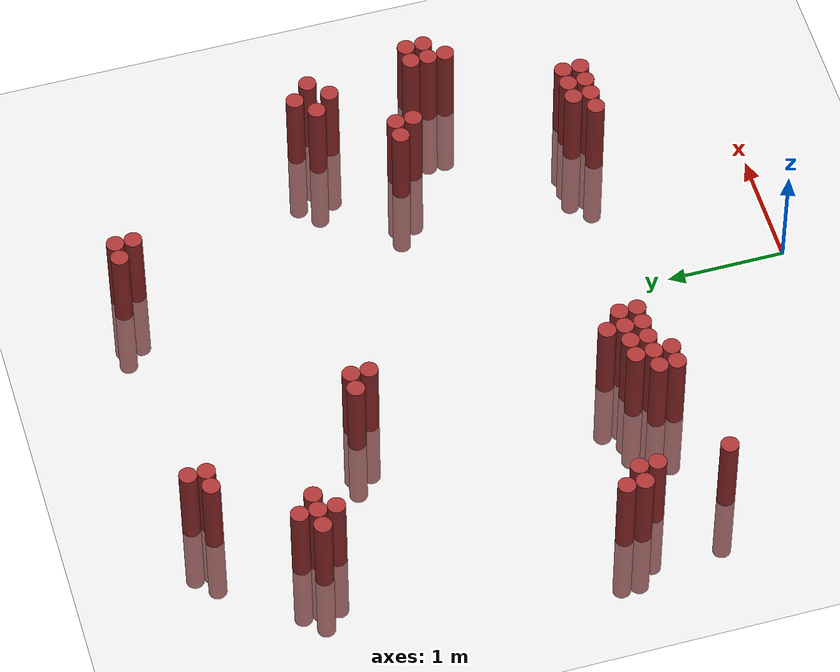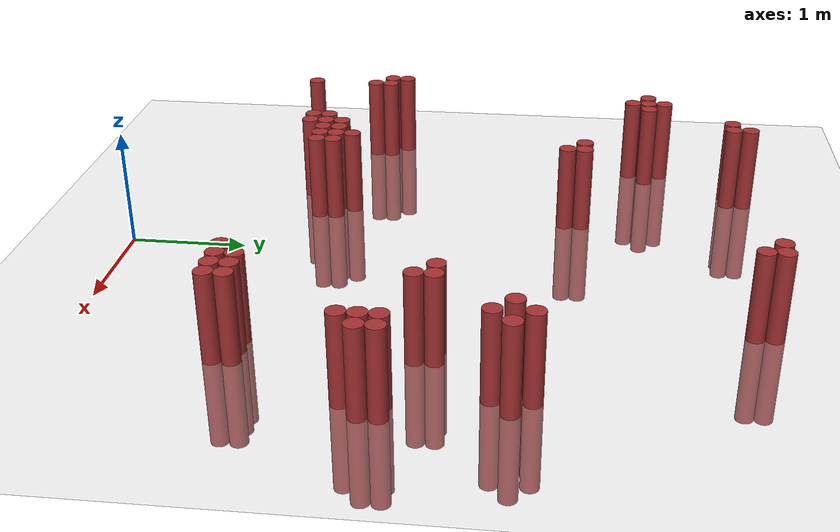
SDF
<sdf version="1.6">
 <world name="default">
  <model name="ground_plane">
   <static>1</static>
   <link name="link">
    <collision name="collision">
     <geometry><plane><normal>0 0 1</normal><size>100 100</size></plane></geometry>
     <surface><friction><ode><mu>100</mu><mu2>50</mu2></ode></friction></surface>
    </collision>
    <visual name="visual">
     <cast_shadows>0</cast_shadows>
     <geometry><plane><normal>0 0 1</normal><size>100 100</size></plane></geometry>
     <material>
      <script><uri>file://media/materials/scripts/gazebo.material</uri><name>Gazebo/Grey</name></script>
     </material>
    </visual>
   </link>
  </model>
  <model name="unit_cylinder_317">
   <static>1</static>
   <pose>-2.375000 1.975000 0.000000 0.000000 0.000000 0.000000</pose>
   <link name="link">
    <inertial>
     <mass>1</mass>
     <inertia><ixx>0.145833</ixx><ixy>0</ixy><ixz>0</ixz><iyy>0.145833</iyy><iyz>0</iyz><izz>0.125</izz></inertia>
    </inertial>
    <collision name="collision">
     <geometry><cylinder><radius>0.075000</radius><length>1.5</length></cylinder></geometry>
    </collision>
    <visual name="visual">
     <geometry><cylinder><radius>0.075000</radius><length>1.5</length></cylinder></geometry>
     <material>
      <ambient>0.648000 0.192000 0.192000 1</ambient>
      <diffuse>0.648000 0.192000 0.192000 1</diffuse>
     </material>
     <material>
      <script><name>Gazebo/Grey</name><uri>file://media/materials/scripts/gazebo.material</uri></script>
     </material>
    </visual>
   </link>
  </model>
  <model name="unit_cylinder_318">
   <static>1</static>
   <pose>-2.375000 2.125000 0.000000 0.000000 0.000000 0.000000</pose>
   <link name="link">
    <inertial>
     <mass>1</mass>
     <inertia><ixx>0.145833</ixx><ixy>0</ixy><ixz>0</ixz><iyy>0.145833</iyy><iyz>0</iyz><izz>0.125</izz></inertia>
    </inertial>
    <collision name="collision">
     <geometry><cylinder><radius>0.075000</radius><length>1.5</length></cylinder></geometry>
    </collision>
    <visual name="visual">
     <geometry><cylinder><radius>0.075000</radius><length>1.5</length></cylinder></geometry>
     <material>
      <ambient>0.648000 0.192000 0.192000 1</ambient>
      <diffuse>0.648000 0.192000 0.192000 1</diffuse>
     </material>
     <material>
      <script><name>Gazebo/Grey</name><uri>file://media/materials/scripts/gazebo.material</uri></script>
     </material>
    </visual>
   </link>
  </model>
  <model name="unit_cylinder_319">
   <static>1</static>
   <pose>-2.225000 1.225000 0.000000 0.000000 0.000000 0.000000</pose>
   <link name="link">
    <inertial>
     <mass>1</mass>
     <inertia><ixx>0.145833</ixx><ixy>0</ixy><ixz>0</ixz><iyy>0.145833</iyy><iyz>0</iyz><izz>0.125</izz></inertia>
    </inertial>
    <collision name="collision">
     <geometry><cylinder><radius>0.075000</radius><length>1.5</length></cylinder></geometry>
    </collision>
    <visual name="visual">
     <geometry><cylinder><radius>0.075000</radius><length>1.5</length></cylinder></geometry>
     <material>
      <ambient>0.648000 0.192000 0.192000 1</ambient>
      <diffuse>0.648000 0.192000 0.192000 1</diffuse>
     </material>
     <material>
      <script><name>Gazebo/Grey</name><uri>file://media/materials/scripts/gazebo.material</uri></script>
     </material>
    </visual>
   </link>
  </model>
  <model name="unit_cylinder_320">
   <static>1</static>
   <pose>-2.225000 1.825000 0.000000 0.000000 0.000000 0.000000</pose>
   <link name="link">
    <inertial>
     <mass>1</mass>
     <inertia><ixx>0.145833</ixx><ixy>0</ixy><ixz>0</ixz><iyy>0.145833</iyy><iyz>0</iyz><izz>0.125</izz></inertia>
    </inertial>
    <collision name="collision">
     <geometry><cylinder><radius>0.075000</radius><length>1.5</length></cylinder></geometry>
    </collision>
    <visual name="visual">
     <geometry><cylinder><radius>0.075000</radius><length>1.5</length></cylinder></geometry>
     <material>
      <ambient>0.648000 0.192000 0.192000 1</ambient>
      <diffuse>0.648000 0.192000 0.192000 1</diffuse>
     </material>
     <material>
      <script><name>Gazebo/Grey</name><uri>file://media/materials/scripts/gazebo.material</uri></script>
     </material>
    </visual>
   </link>
  </model>
  <model name="unit_cylinder_321">
   <static>1</static>
   <pose>-2.225000 1.975000 0.000000 0.000000 0.000000 0.000000</pose>
   <link name="link">
    <inertial>
     <mass>1</mass>
     <inertia><ixx>0.145833</ixx><ixy>0</ixy><ixz>0</ixz><iyy>0.145833</iyy><iyz>0</iyz><izz>0.125</izz></inertia>
    </inertial>
    <collision name="collision">
     <geometry><cylinder><radius>0.075000</radius><length>1.5</length></cylinder></geometry>
    </collision>
    <visual name="visual">
     <geometry><cylinder><radius>0.075000</radius><length>1.5</length></cylinder></geometry>
     <material>
      <ambient>0.648000 0.192000 0.192000 1</ambient>
      <diffuse>0.648000 0.192000 0.192000 1</diffuse>
     </material>
     <material>
      <script><name>Gazebo/Grey</name><uri>file://media/materials/scripts/gazebo.material</uri></script>
     </material>
    </visual>
   </link>
  </model>
  <model name="unit_cylinder_324">
   <static>1</static>
   <pose>-2.075000 4.525000 0.000000 0.000000 0.000000 0.000000</pose>
   <link name="link">
    <inertial>
     <mass>1</mass>
     <inertia><ixx>0.145833</ixx><ixy>0</ixy><ixz>0</ixz><iyy>0.145833</iyy><iyz>0</iyz><izz>0.125</izz></inertia>
    </inertial>
    <collision name="collision">
     <geometry><cylinder><radius>0.075000</radius><length>1.5</length></cylinder></geometry>
    </collision>
    <visual name="visual">
     <geometry><cylinder><radius>0.075000</radius><length>1.5</length></cylinder></geometry>
     <material>
      <ambient>0.648000 0.192000 0.192000 1</ambient>
      <diffuse>0.648000 0.192000 0.192000 1</diffuse>
     </material>
     <material>
      <script><name>Gazebo/Grey</name><uri>file://media/materials/scripts/gazebo.material</uri></script>
     </material>
    </visual>
   </link>
  </model>
  <model name="unit_cylinder_331">
   <static>1</static>
   <pose>-1.925000 4.375000 0.000000 0.000000 0.000000 0.000000</pose>
   <link name="link">
    <inertial>
     <mass>1</mass>
     <inertia><ixx>0.145833</ixx><ixy>0</ixy><ixz>0</ixz><iyy>0.145833</iyy><iyz>0</iyz><izz>0.125</izz></inertia>
    </inertial>
    <collision name="collision">
     <geometry><cylinder><radius>0.075000</radius><length>1.5</length></cylinder></geometry>
    </collision>
    <visual name="visual">
     <geometry><cylinder><radius>0.075000</radius><length>1.5</length></cylinder></geometry>
     <material>
      <ambient>0.648000 0.192000 0.192000 1</ambient>
      <diffuse>0.648000 0.192000 0.192000 1</diffuse>
     </material>
     <material>
      <script><name>Gazebo/Grey</name><uri>file://media/materials/scripts/gazebo.material</uri></script>
     </material>
    </visual>
   </link>
  </model>
  <model name="unit_cylinder_332">
   <static>1</static>
   <pose>-1.925000 4.525000 0.000000 0.000000 0.000000 0.000000</pose>
   <link name="link">
    <inertial>
     <mass>1</mass>
     <inertia><ixx>0.145833</ixx><ixy>0</ixy><ixz>0</ixz><iyy>0.145833</iyy><iyz>0</iyz><izz>0.125</izz></inertia>
    </inertial>
    <collision name="collision">
     <geometry><cylinder><radius>0.075000</radius><length>1.5</length></cylinder></geometry>
    </collision>
    <visual name="visual">
     <geometry><cylinder><radius>0.075000</radius><length>1.5</length></cylinder></geometry>
     <material>
      <ambient>0.648000 0.192000 0.192000 1</ambient>
      <diffuse>0.648000 0.192000 0.192000 1</diffuse>
     </material>
     <material>
      <script><name>Gazebo/Grey</name><uri>file://media/materials/scripts/gazebo.material</uri></script>
     </material>
    </visual>
   </link>
  </model>
  <model name="unit_cylinder_333">
   <static>1</static>
   <pose>-1.925000 4.675000 0.000000 0.000000 0.000000 0.000000</pose>
   <link name="link">
    <inertial>
     <mass>1</mass>
     <inertia><ixx>0.145833</ixx><ixy>0</ixy><ixz>0</ixz><iyy>0.145833</iyy><iyz>0</iyz><izz>0.125</izz></inertia>
    </inertial>
    <collision name="collision">
     <geometry><cylinder><radius>0.075000</radius><length>1.5</length></cylinder></geometry>
    </collision>
    <visual name="visual">
     <geometry><cylinder><radius>0.075000</radius><length>1.5</length></cylinder></geometry>
     <material>
      <ambient>0.648000 0.192000 0.192000 1</ambient>
      <diffuse>0.648000 0.192000 0.192000 1</diffuse>
     </material>
     <material>
      <script><name>Gazebo/Grey</name><uri>file://media/materials/scripts/gazebo.material</uri></script>
     </material>
    </visual>
   </link>
  </model>
  <model name="unit_cylinder_336">
   <static>1</static>
   <pose>-1.775000 4.525000 0.000000 0.000000 0.000000 0.000000</pose>
   <link name="link">
    <inertial>
     <mass>1</mass>
     <inertia><ixx>0.145833</ixx><ixy>0</ixy><ixz>0</ixz><iyy>0.145833</iyy><iyz>0</iyz><izz>0.125</izz></inertia>
    </inertial>
    <collision name="collision">
     <geometry><cylinder><radius>0.075000</radius><length>1.5</length></cylinder></geometry>
    </collision>
    <visual name="visual">
     <geometry><cylinder><radius>0.075000</radius><length>1.5</length></cylinder></geometry>
     <material>
      <ambient>0.648000 0.192000 0.192000 1</ambient>
      <diffuse>0.648000 0.192000 0.192000 1</diffuse>
     </material>
     <material>
      <script><name>Gazebo/Grey</name><uri>file://media/materials/scripts/gazebo.material</uri></script>
     </material>
    </visual>
   </link>
  </model>
  <model name="unit_cylinder_337">
   <static>1</static>
   <pose>-1.475000 5.275000 0.000000 0.000000 0.000000 0.000000</pose>
   <link name="link">
    <inertial>
     <mass>1</mass>
     <inertia><ixx>0.145833</ixx><ixy>0</ixy><ixz>0</ixz><iyy>0.145833</iyy><iyz>0</iyz><izz>0.125</izz></inertia>
    </inertial>
    <collision name="collision">
     <geometry><cylinder><radius>0.075000</radius><length>1.5</length></cylinder></geometry>
    </collision>
    <visual name="visual">
     <geometry><cylinder><radius>0.075000</radius><length>1.5</length></cylinder></geometry>
     <material>
      <ambient>0.648000 0.192000 0.192000 1</ambient>
      <diffuse>0.648000 0.192000 0.192000 1</diffuse>
     </material>
     <material>
      <script><name>Gazebo/Grey</name><uri>file://media/materials/scripts/gazebo.material</uri></script>
     </material>
    </visual>
   </link>
  </model>
  <model name="unit_cylinder_338">
   <static>1</static>
   <pose>-1.325000 1.375000 0.000000 0.000000 0.000000 0.000000</pose>
   <link name="link">
    <inertial>
     <mass>1</mass>
     <inertia><ixx>0.145833</ixx><ixy>0</ixy><ixz>0</ixz><iyy>0.145833</iyy><iyz>0</iyz><izz>0.125</izz></inertia>
    </inertial>
    <collision name="collision">
     <geometry><cylinder><radius>0.075000</radius><length>1.5</length></cylinder></geometry>
    </collision>
    <visual name="visual">
     <geometry><cylinder><radius>0.075000</radius><length>1.5</length></cylinder></geometry>
     <material>
      <ambient>0.648000 0.192000 0.192000 1</ambient>
      <diffuse>0.648000 0.192000 0.192000 1</diffuse>
     </material>
     <material>
      <script><name>Gazebo/Grey</name><uri>file://media/materials/scripts/gazebo.material</uri></script>
     </material>
    </visual>
   </link>
  </model>
  <model name="unit_cylinder_339">
   <static>1</static>
   <pose>-1.325000 1.525000 0.000000 0.000000 0.000000 0.000000</pose>
   <link name="link">
    <inertial>
     <mass>1</mass>
     <inertia><ixx>0.145833</ixx><ixy>0</ixy><ixz>0</ixz><iyy>0.145833</iyy><iyz>0</iyz><izz>0.125</izz></inertia>
    </inertial>
    <collision name="collision">
     <geometry><cylinder><radius>0.075000</radius><length>1.5</length></cylinder></geometry>
    </collision>
    <visual name="visual">
     <geometry><cylinder><radius>0.075000</radius><length>1.5</length></cylinder></geometry>
     <material>
      <ambient>0.648000 0.192000 0.192000 1</ambient>
      <diffuse>0.648000 0.192000 0.192000 1</diffuse>
     </material>
     <material>
      <script><name>Gazebo/Grey</name><uri>file://media/materials/scripts/gazebo.material</uri></script>
     </material>
    </visual>
   </link>
  </model>
  <model name="unit_cylinder_340">
   <static>1</static>
   <pose>-1.325000 5.275000 0.000000 0.000000 0.000000 0.000000</pose>
   <link name="link">
    <inertial>
     <mass>1</mass>
     <inertia><ixx>0.145833</ixx><ixy>0</ixy><ixz>0</ixz><iyy>0.145833</iyy><iyz>0</iyz><izz>0.125</izz></inertia>
    </inertial>
    <collision name="collision">
     <geometry><cylinder><radius>0.075000</radius><length>1.5</length></cylinder></geometry>
    </collision>
    <visual name="visual">
     <geometry><cylinder><radius>0.075000</radius><length>1.5</length></cylinder></geometry>
     <material>
      <ambient>0.648000 0.192000 0.192000 1</ambient>
      <diffuse>0.648000 0.192000 0.192000 1</diffuse>
     </material>
     <material>
      <script><name>Gazebo/Grey</name><uri>file://media/materials/scripts/gazebo.material</uri></script>
     </material>
    </visual>
   </link>
  </model>
  <model name="unit_cylinder_341">
   <static>1</static>
   <pose>-1.325000 5.425000 0.000000 0.000000 0.000000 0.000000</pose>
   <link name="link">
    <inertial>
     <mass>1</mass>
     <inertia><ixx>0.145833</ixx><ixy>0</ixy><ixz>0</ixz><iyy>0.145833</iyy><iyz>0</iyz><izz>0.125</izz></inertia>
    </inertial>
    <collision name="collision">
     <geometry><cylinder><radius>0.075000</radius><length>1.5</length></cylinder></geometry>
    </collision>
    <visual name="visual">
     <geometry><cylinder><radius>0.075000</radius><length>1.5</length></cylinder></geometry>
     <material>
      <ambient>0.648000 0.192000 0.192000 1</ambient>
      <diffuse>0.648000 0.192000 0.192000 1</diffuse>
     </material>
     <material>
      <script><name>Gazebo/Grey</name><uri>file://media/materials/scripts/gazebo.material</uri></script>
     </material>
    </visual>
   </link>
  </model>
  <model name="unit_cylinder_342">
   <static>1</static>
   <pose>-1.175000 1.375000 0.000000 0.000000 0.000000 0.000000</pose>
   <link name="link">
    <inertial>
     <mass>1</mass>
     <inertia><ixx>0.145833</ixx><ixy>0</ixy><ixz>0</ixz><iyy>0.145833</iyy><iyz>0</iyz><izz>0.125</izz></inertia>
    </inertial>
    <collision name="collision">
     <geometry><cylinder><radius>0.075000</radius><length>1.5</length></cylinder></geometry>
    </collision>
    <visual name="visual">
     <geometry><cylinder><radius>0.075000</radius><length>1.5</length></cylinder></geometry>
     <material>
      <ambient>0.648000 0.192000 0.192000 1</ambient>
      <diffuse>0.648000 0.192000 0.192000 1</diffuse>
     </material>
     <material>
      <script><name>Gazebo/Grey</name><uri>file://media/materials/scripts/gazebo.material</uri></script>
     </material>
    </visual>
   </link>
  </model>
  <model name="unit_cylinder_343">
   <static>1</static>
   <pose>-1.175000 1.525000 0.000000 0.000000 0.000000 0.000000</pose>
   <link name="link">
    <inertial>
     <mass>1</mass>
     <inertia><ixx>0.145833</ixx><ixy>0</ixy><ixz>0</ixz><iyy>0.145833</iyy><iyz>0</iyz><izz>0.125</izz></inertia>
    </inertial>
    <collision name="collision">
     <geometry><cylinder><radius>0.075000</radius><length>1.5</length></cylinder></geometry>
    </collision>
    <visual name="visual">
     <geometry><cylinder><radius>0.075000</radius><length>1.5</length></cylinder></geometry>
     <material>
      <ambient>0.648000 0.192000 0.192000 1</ambient>
      <diffuse>0.648000 0.192000 0.192000 1</diffuse>
     </material>
     <material>
      <script><name>Gazebo/Grey</name><uri>file://media/materials/scripts/gazebo.material</uri></script>
     </material>
    </visual>
   </link>
  </model>
  <model name="unit_cylinder_344">
   <static>1</static>
   <pose>-1.175000 1.675000 0.000000 0.000000 0.000000 0.000000</pose>
   <link name="link">
    <inertial>
     <mass>1</mass>
     <inertia><ixx>0.145833</ixx><ixy>0</ixy><ixz>0</ixz><iyy>0.145833</iyy><iyz>0</iyz><izz>0.125</izz></inertia>
    </inertial>
    <collision name="collision">
     <geometry><cylinder><radius>0.075000</radius><length>1.5</length></cylinder></geometry>
    </collision>
    <visual name="visual">
     <geometry><cylinder><radius>0.075000</radius><length>1.5</length></cylinder></geometry>
     <material>
      <ambient>0.648000 0.192000 0.192000 1</ambient>
      <diffuse>0.648000 0.192000 0.192000 1</diffuse>
     </material>
     <material>
      <script><name>Gazebo/Grey</name><uri>file://media/materials/scripts/gazebo.material</uri></script>
     </material>
    </visual>
   </link>
  </model>
  <model name="unit_cylinder_346">
   <static>1</static>
   <pose>-1.025000 1.525000 0.000000 0.000000 0.000000 0.000000</pose>
   <link name="link">
    <inertial>
     <mass>1</mass>
     <inertia><ixx>0.145833</ixx><ixy>0</ixy><ixz>0</ixz><iyy>0.145833</iyy><iyz>0</iyz><izz>0.125</izz></inertia>
    </inertial>
    <collision name="collision">
     <geometry><cylinder><radius>0.075000</radius><length>1.5</length></cylinder></geometry>
    </collision>
    <visual name="visual">
     <geometry><cylinder><radius>0.075000</radius><length>1.5</length></cylinder></geometry>
     <material>
      <ambient>0.648000 0.192000 0.192000 1</ambient>
      <diffuse>0.648000 0.192000 0.192000 1</diffuse>
     </material>
     <material>
      <script><name>Gazebo/Grey</name><uri>file://media/materials/scripts/gazebo.material</uri></script>
     </material>
    </visual>
   </link>
  </model>
  <model name="unit_cylinder_347">
   <static>1</static>
   <pose>-1.025000 1.675000 0.000000 0.000000 0.000000 0.000000</pose>
   <link name="link">
    <inertial>
     <mass>1</mass>
     <inertia><ixx>0.145833</ixx><ixy>0</ixy><ixz>0</ixz><iyy>0.145833</iyy><iyz>0</iyz><izz>0.125</izz></inertia>
    </inertial>
    <collision name="collision">
     <geometry><cylinder><radius>0.075000</radius><length>1.5</length></cylinder></geometry>
    </collision>
    <visual name="visual">
     <geometry><cylinder><radius>0.075000</radius><length>1.5</length></cylinder></geometry>
     <material>
      <ambient>0.648000 0.192000 0.192000 1</ambient>
      <diffuse>0.648000 0.192000 0.192000 1</diffuse>
     </material>
     <material>
      <script><name>Gazebo/Grey</name><uri>file://media/materials/scripts/gazebo.material</uri></script>
     </material>
    </visual>
   </link>
  </model>
  <model name="unit_cylinder_350">
   <static>1</static>
   <pose>-0.875000 1.525000 0.000000 0.000000 0.000000 0.000000</pose>
   <link name="link">
    <inertial>
     <mass>1</mass>
     <inertia><ixx>0.145833</ixx><ixy>0</ixy><ixz>0</ixz><iyy>0.145833</iyy><iyz>0</iyz><izz>0.125</izz></inertia>
    </inertial>
    <collision name="collision">
     <geometry><cylinder><radius>0.075000</radius><length>1.5</length></cylinder></geometry>
    </collision>
    <visual name="visual">
     <geometry><cylinder><radius>0.075000</radius><length>1.5</length></cylinder></geometry>
     <material>
      <ambient>0.648000 0.192000 0.192000 1</ambient>
      <diffuse>0.648000 0.192000 0.192000 1</diffuse>
     </material>
     <material>
      <script><name>Gazebo/Grey</name><uri>file://media/materials/scripts/gazebo.material</uri></script>
     </material>
    </visual>
   </link>
  </model>
  <model name="unit_cylinder_351">
   <static>1</static>
   <pose>-0.875000 1.675000 0.000000 0.000000 0.000000 0.000000</pose>
   <link name="link">
    <inertial>
     <mass>1</mass>
     <inertia><ixx>0.145833</ixx><ixy>0</ixy><ixz>0</ixz><iyy>0.145833</iyy><iyz>0</iyz><izz>0.125</izz></inertia>
    </inertial>
    <collision name="collision">
     <geometry><cylinder><radius>0.075000</radius><length>1.5</length></cylinder></geometry>
    </collision>
    <visual name="visual">
     <geometry><cylinder><radius>0.075000</radius><length>1.5</length></cylinder></geometry>
     <material>
      <ambient>0.648000 0.192000 0.192000 1</ambient>
      <diffuse>0.648000 0.192000 0.192000 1</diffuse>
     </material>
     <material>
      <script><name>Gazebo/Grey</name><uri>file://media/materials/scripts/gazebo.material</uri></script>
     </material>
    </visual>
   </link>
  </model>
  <model name="unit_cylinder_352">
   <static>1</static>
   <pose>-0.875000 1.825000 0.000000 0.000000 0.000000 0.000000</pose>
   <link name="link">
    <inertial>
     <mass>1</mass>
     <inertia><ixx>0.145833</ixx><ixy>0</ixy><ixz>0</ixz><iyy>0.145833</iyy><iyz>0</iyz><izz>0.125</izz></inertia>
    </inertial>
    <collision name="collision">
     <geometry><cylinder><radius>0.075000</radius><length>1.5</length></cylinder></geometry>
    </collision>
    <visual name="visual">
     <geometry><cylinder><radius>0.075000</radius><length>1.5</length></cylinder></geometry>
     <material>
      <ambient>0.648000 0.192000 0.192000 1</ambient>
      <diffuse>0.648000 0.192000 0.192000 1</diffuse>
     </material>
     <material>
      <script><name>Gazebo/Grey</name><uri>file://media/materials/scripts/gazebo.material</uri></script>
     </material>
    </visual>
   </link>
  </model>
  <model name="unit_cylinder_353">
   <static>1</static>
   <pose>-0.875000 3.925000 0.000000 0.000000 0.000000 0.000000</pose>
   <link name="link">
    <inertial>
     <mass>1</mass>
     <inertia><ixx>0.145833</ixx><ixy>0</ixy><ixz>0</ixz><iyy>0.145833</iyy><iyz>0</iyz><izz>0.125</izz></inertia>
    </inertial>
    <collision name="collision">
     <geometry><cylinder><radius>0.075000</radius><length>1.5</length></cylinder></geometry>
    </collision>
    <visual name="visual">
     <geometry><cylinder><radius>0.075000</radius><length>1.5</length></cylinder></geometry>
     <material>
      <ambient>0.648000 0.192000 0.192000 1</ambient>
      <diffuse>0.648000 0.192000 0.192000 1</diffuse>
     </material>
     <material>
      <script><name>Gazebo/Grey</name><uri>file://media/materials/scripts/gazebo.material</uri></script>
     </material>
    </visual>
   </link>
  </model>
  <model name="unit_cylinder_355">
   <static>1</static>
   <pose>-0.725000 1.525000 0.000000 0.000000 0.000000 0.000000</pose>
   <link name="link">
    <inertial>
     <mass>1</mass>
     <inertia><ixx>0.145833</ixx><ixy>0</ixy><ixz>0</ixz><iyy>0.145833</iyy><iyz>0</iyz><izz>0.125</izz></inertia>
    </inertial>
    <collision name="collision">
     <geometry><cylinder><radius>0.075000</radius><length>1.5</length></cylinder></geometry>
    </collision>
    <visual name="visual">
     <geometry><cylinder><radius>0.075000</radius><length>1.5</length></cylinder></geometry>
     <material>
      <ambient>0.648000 0.192000 0.192000 1</ambient>
      <diffuse>0.648000 0.192000 0.192000 1</diffuse>
     </material>
     <material>
      <script><name>Gazebo/Grey</name><uri>file://media/materials/scripts/gazebo.material</uri></script>
     </material>
    </visual>
   </link>
  </model>
  <model name="unit_cylinder_356">
   <static>1</static>
   <pose>-0.725000 1.675000 0.000000 0.000000 0.000000 0.000000</pose>
   <link name="link">
    <inertial>
     <mass>1</mass>
     <inertia><ixx>0.145833</ixx><ixy>0</ixy><ixz>0</ixz><iyy>0.145833</iyy><iyz>0</iyz><izz>0.125</izz></inertia>
    </inertial>
    <collision name="collision">
     <geometry><cylinder><radius>0.075000</radius><length>1.5</length></cylinder></geometry>
    </collision>
    <visual name="visual">
     <geometry><cylinder><radius>0.075000</radius><length>1.5</length></cylinder></geometry>
     <material>
      <ambient>0.648000 0.192000 0.192000 1</ambient>
      <diffuse>0.648000 0.192000 0.192000 1</diffuse>
     </material>
     <material>
      <script><name>Gazebo/Grey</name><uri>file://media/materials/scripts/gazebo.material</uri></script>
     </material>
    </visual>
   </link>
  </model>
  <model name="unit_cylinder_357">
   <static>1</static>
   <pose>-0.725000 3.775000 0.000000 0.000000 0.000000 0.000000</pose>
   <link name="link">
    <inertial>
     <mass>1</mass>
     <inertia><ixx>0.145833</ixx><ixy>0</ixy><ixz>0</ixz><iyy>0.145833</iyy><iyz>0</iyz><izz>0.125</izz></inertia>
    </inertial>
    <collision name="collision">
     <geometry><cylinder><radius>0.075000</radius><length>1.5</length></cylinder></geometry>
    </collision>
    <visual name="visual">
     <geometry><cylinder><radius>0.075000</radius><length>1.5</length></cylinder></geometry>
     <material>
      <ambient>0.648000 0.192000 0.192000 1</ambient>
      <diffuse>0.648000 0.192000 0.192000 1</diffuse>
     </material>
     <material>
      <script><name>Gazebo/Grey</name><uri>file://media/materials/scripts/gazebo.material</uri></script>
     </material>
    </visual>
   </link>
  </model>
  <model name="unit_cylinder_358">
   <static>1</static>
   <pose>-0.725000 3.925000 0.000000 0.000000 0.000000 0.000000</pose>
   <link name="link">
    <inertial>
     <mass>1</mass>
     <inertia><ixx>0.145833</ixx><ixy>0</ixy><ixz>0</ixz><iyy>0.145833</iyy><iyz>0</iyz><izz>0.125</izz></inertia>
    </inertial>
    <collision name="collision">
     <geometry><cylinder><radius>0.075000</radius><length>1.5</length></cylinder></geometry>
    </collision>
    <visual name="visual">
     <geometry><cylinder><radius>0.075000</radius><length>1.5</length></cylinder></geometry>
     <material>
      <ambient>0.648000 0.192000 0.192000 1</ambient>
      <diffuse>0.648000 0.192000 0.192000 1</diffuse>
     </material>
     <material>
      <script><name>Gazebo/Grey</name><uri>file://media/materials/scripts/gazebo.material</uri></script>
     </material>
    </visual>
   </link>
  </model>
  <model name="unit_cylinder_370">
   <static>1</static>
   <pose>0.925000 5.425000 0.000000 0.000000 0.000000 0.000000</pose>
   <link name="link">
    <inertial>
     <mass>1</mass>
     <inertia><ixx>0.145833</ixx><ixy>0</ixy><ixz>0</ixz><iyy>0.145833</iyy><iyz>0</iyz><izz>0.125</izz></inertia>
    </inertial>
    <collision name="collision">
     <geometry><cylinder><radius>0.075000</radius><length>1.5</length></cylinder></geometry>
    </collision>
    <visual name="visual">
     <geometry><cylinder><radius>0.075000</radius><length>1.5</length></cylinder></geometry>
     <material>
      <ambient>0.648000 0.192000 0.192000 1</ambient>
      <diffuse>0.648000 0.192000 0.192000 1</diffuse>
     </material>
     <material>
      <script><name>Gazebo/Grey</name><uri>file://media/materials/scripts/gazebo.material</uri></script>
     </material>
    </visual>
   </link>
  </model>
  <model name="unit_cylinder_371">
   <static>1</static>
   <pose>1.075000 5.275000 0.000000 0.000000 0.000000 0.000000</pose>
   <link name="link">
    <inertial>
     <mass>1</mass>
     <inertia><ixx>0.145833</ixx><ixy>0</ixy><ixz>0</ixz><iyy>0.145833</iyy><iyz>0</iyz><izz>0.125</izz></inertia>
    </inertial>
    <collision name="collision">
     <geometry><cylinder><radius>0.075000</radius><length>1.5</length></cylinder></geometry>
    </collision>
    <visual name="visual">
     <geometry><cylinder><radius>0.075000</radius><length>1.5</length></cylinder></geometry>
     <material>
      <ambient>0.648000 0.192000 0.192000 1</ambient>
      <diffuse>0.648000 0.192000 0.192000 1</diffuse>
     </material>
     <material>
      <script><name>Gazebo/Grey</name><uri>file://media/materials/scripts/gazebo.material</uri></script>
     </material>
    </visual>
   </link>
  </model>
  <model name="unit_cylinder_372">
   <static>1</static>
   <pose>1.075000 5.425000 0.000000 0.000000 0.000000 0.000000</pose>
   <link name="link">
    <inertial>
     <mass>1</mass>
     <inertia><ixx>0.145833</ixx><ixy>0</ixy><ixz>0</ixz><iyy>0.145833</iyy><iyz>0</iyz><izz>0.125</izz></inertia>
    </inertial>
    <collision name="collision">
     <geometry><cylinder><radius>0.075000</radius><length>1.5</length></cylinder></geometry>
    </collision>
    <visual name="visual">
     <geometry><cylinder><radius>0.075000</radius><length>1.5</length></cylinder></geometry>
     <material>
      <ambient>0.648000 0.192000 0.192000 1</ambient>
      <diffuse>0.648000 0.192000 0.192000 1</diffuse>
     </material>
     <material>
      <script><name>Gazebo/Grey</name><uri>file://media/materials/scripts/gazebo.material</uri></script>
     </material>
    </visual>
   </link>
  </model>
  <model name="unit_cylinder_373">
   <static>1</static>
   <pose>1.375000 1.225000 0.000000 0.000000 0.000000 0.000000</pose>
   <link name="link">
    <inertial>
     <mass>1</mass>
     <inertia><ixx>0.145833</ixx><ixy>0</ixy><ixz>0</ixz><iyy>0.145833</iyy><iyz>0</iyz><izz>0.125</izz></inertia>
    </inertial>
    <collision name="collision">
     <geometry><cylinder><radius>0.075000</radius><length>1.5</length></cylinder></geometry>
    </collision>
    <visual name="visual">
     <geometry><cylinder><radius>0.075000</radius><length>1.5</length></cylinder></geometry>
     <material>
      <ambient>0.648000 0.192000 0.192000 1</ambient>
      <diffuse>0.648000 0.192000 0.192000 1</diffuse>
     </material>
     <material>
      <script><name>Gazebo/Grey</name><uri>file://media/materials/scripts/gazebo.material</uri></script>
     </material>
    </visual>
   </link>
  </model>
  <model name="unit_cylinder_376">
   <static>1</static>
   <pose>1.525000 1.225000 0.000000 0.000000 0.000000 0.000000</pose>
   <link name="link">
    <inertial>
     <mass>1</mass>
     <inertia><ixx>0.145833</ixx><ixy>0</ixy><ixz>0</ixz><iyy>0.145833</iyy><iyz>0</iyz><izz>0.125</izz></inertia>
    </inertial>
    <collision name="collision">
     <geometry><cylinder><radius>0.075000</radius><length>1.5</length></cylinder></geometry>
    </collision>
    <visual name="visual">
     <geometry><cylinder><radius>0.075000</radius><length>1.5</length></cylinder></geometry>
     <material>
      <ambient>0.648000 0.192000 0.192000 1</ambient>
      <diffuse>0.648000 0.192000 0.192000 1</diffuse>
     </material>
     <material>
      <script><name>Gazebo/Grey</name><uri>file://media/materials/scripts/gazebo.material</uri></script>
     </material>
    </visual>
   </link>
  </model>
  <model name="unit_cylinder_377">
   <static>1</static>
   <pose>1.525000 1.375000 0.000000 0.000000 0.000000 0.000000</pose>
   <link name="link">
    <inertial>
     <mass>1</mass>
     <inertia><ixx>0.145833</ixx><ixy>0</ixy><ixz>0</ixz><iyy>0.145833</iyy><iyz>0</iyz><izz>0.125</izz></inertia>
    </inertial>
    <collision name="collision">
     <geometry><cylinder><radius>0.075000</radius><length>1.5</length></cylinder></geometry>
    </collision>
    <visual name="visual">
     <geometry><cylinder><radius>0.075000</radius><length>1.5</length></cylinder></geometry>
     <material>
      <ambient>0.648000 0.192000 0.192000 1</ambient>
      <diffuse>0.648000 0.192000 0.192000 1</diffuse>
     </material>
     <material>
      <script><name>Gazebo/Grey</name><uri>file://media/materials/scripts/gazebo.material</uri></script>
     </material>
    </visual>
   </link>
  </model>
  <model name="unit_cylinder_378">
   <static>1</static>
   <pose>1.525000 2.875000 0.000000 0.000000 0.000000 0.000000</pose>
   <link name="link">
    <inertial>
     <mass>1</mass>
     <inertia><ixx>0.145833</ixx><ixy>0</ixy><ixz>0</ixz><iyy>0.145833</iyy><iyz>0</iyz><izz>0.125</izz></inertia>
    </inertial>
    <collision name="collision">
     <geometry><cylinder><radius>0.075000</radius><length>1.5</length></cylinder></geometry>
    </collision>
    <visual name="visual">
     <geometry><cylinder><radius>0.075000</radius><length>1.5</length></cylinder></geometry>
     <material>
      <ambient>0.648000 0.192000 0.192000 1</ambient>
      <diffuse>0.648000 0.192000 0.192000 1</diffuse>
     </material>
     <material>
      <script><name>Gazebo/Grey</name><uri>file://media/materials/scripts/gazebo.material</uri></script>
     </material>
    </visual>
   </link>
  </model>
  <model name="unit_cylinder_382">
   <static>1</static>
   <pose>1.675000 1.225000 0.000000 0.000000 0.000000 0.000000</pose>
   <link name="link">
    <inertial>
     <mass>1</mass>
     <inertia><ixx>0.145833</ixx><ixy>0</ixy><ixz>0</ixz><iyy>0.145833</iyy><iyz>0</iyz><izz>0.125</izz></inertia>
    </inertial>
    <collision name="collision">
     <geometry><cylinder><radius>0.075000</radius><length>1.5</length></cylinder></geometry>
    </collision>
    <visual name="visual">
     <geometry><cylinder><radius>0.075000</radius><length>1.5</length></cylinder></geometry>
     <material>
      <ambient>0.648000 0.192000 0.192000 1</ambient>
      <diffuse>0.648000 0.192000 0.192000 1</diffuse>
     </material>
     <material>
      <script><name>Gazebo/Grey</name><uri>file://media/materials/scripts/gazebo.material</uri></script>
     </material>
    </visual>
   </link>
  </model>
  <model name="unit_cylinder_383">
   <static>1</static>
   <pose>1.675000 1.375000 0.000000 0.000000 0.000000 0.000000</pose>
   <link name="link">
    <inertial>
     <mass>1</mass>
     <inertia><ixx>0.145833</ixx><ixy>0</ixy><ixz>0</ixz><iyy>0.145833</iyy><iyz>0</iyz><izz>0.125</izz></inertia>
    </inertial>
    <collision name="collision">
     <geometry><cylinder><radius>0.075000</radius><length>1.5</length></cylinder></geometry>
    </collision>
    <visual name="visual">
     <geometry><cylinder><radius>0.075000</radius><length>1.5</length></cylinder></geometry>
     <material>
      <ambient>0.648000 0.192000 0.192000 1</ambient>
      <diffuse>0.648000 0.192000 0.192000 1</diffuse>
     </material>
     <material>
      <script><name>Gazebo/Grey</name><uri>file://media/materials/scripts/gazebo.material</uri></script>
     </material>
    </visual>
   </link>
  </model>
  <model name="unit_cylinder_384">
   <static>1</static>
   <pose>1.675000 2.725000 0.000000 0.000000 0.000000 0.000000</pose>
   <link name="link">
    <inertial>
     <mass>1</mass>
     <inertia><ixx>0.145833</ixx><ixy>0</ixy><ixz>0</ixz><iyy>0.145833</iyy><iyz>0</iyz><izz>0.125</izz></inertia>
    </inertial>
    <collision name="collision">
     <geometry><cylinder><radius>0.075000</radius><length>1.5</length></cylinder></geometry>
    </collision>
    <visual name="visual">
     <geometry><cylinder><radius>0.075000</radius><length>1.5</length></cylinder></geometry>
     <material>
      <ambient>0.648000 0.192000 0.192000 1</ambient>
      <diffuse>0.648000 0.192000 0.192000 1</diffuse>
     </material>
     <material>
      <script><name>Gazebo/Grey</name><uri>file://media/materials/scripts/gazebo.material</uri></script>
     </material>
    </visual>
   </link>
  </model>
  <model name="unit_cylinder_385">
   <static>1</static>
   <pose>1.675000 2.875000 0.000000 0.000000 0.000000 0.000000</pose>
   <link name="link">
    <inertial>
     <mass>1</mass>
     <inertia><ixx>0.145833</ixx><ixy>0</ixy><ixz>0</ixz><iyy>0.145833</iyy><iyz>0</iyz><izz>0.125</izz></inertia>
    </inertial>
    <collision name="collision">
     <geometry><cylinder><radius>0.075000</radius><length>1.5</length></cylinder></geometry>
    </collision>
    <visual name="visual">
     <geometry><cylinder><radius>0.075000</radius><length>1.5</length></cylinder></geometry>
     <material>
      <ambient>0.648000 0.192000 0.192000 1</ambient>
      <diffuse>0.648000 0.192000 0.192000 1</diffuse>
     </material>
     <material>
      <script><name>Gazebo/Grey</name><uri>file://media/materials/scripts/gazebo.material</uri></script>
     </material>
    </visual>
   </link>
  </model>
  <model name="unit_cylinder_387">
   <static>1</static>
   <pose>1.825000 1.225000 0.000000 0.000000 0.000000 0.000000</pose>
   <link name="link">
    <inertial>
     <mass>1</mass>
     <inertia><ixx>0.145833</ixx><ixy>0</ixy><ixz>0</ixz><iyy>0.145833</iyy><iyz>0</iyz><izz>0.125</izz></inertia>
    </inertial>
    <collision name="collision">
     <geometry><cylinder><radius>0.075000</radius><length>1.5</length></cylinder></geometry>
    </collision>
    <visual name="visual">
     <geometry><cylinder><radius>0.075000</radius><length>1.5</length></cylinder></geometry>
     <material>
      <ambient>0.648000 0.192000 0.192000 1</ambient>
      <diffuse>0.648000 0.192000 0.192000 1</diffuse>
     </material>
     <material>
      <script><name>Gazebo/Grey</name><uri>file://media/materials/scripts/gazebo.material</uri></script>
     </material>
    </visual>
   </link>
  </model>
  <model name="unit_cylinder_388">
   <static>1</static>
   <pose>1.825000 1.375000 0.000000 0.000000 0.000000 0.000000</pose>
   <link name="link">
    <inertial>
     <mass>1</mass>
     <inertia><ixx>0.145833</ixx><ixy>0</ixy><ixz>0</ixz><iyy>0.145833</iyy><iyz>0</iyz><izz>0.125</izz></inertia>
    </inertial>
    <collision name="collision">
     <geometry><cylinder><radius>0.075000</radius><length>1.5</length></cylinder></geometry>
    </collision>
    <visual name="visual">
     <geometry><cylinder><radius>0.075000</radius><length>1.5</length></cylinder></geometry>
     <material>
      <ambient>0.648000 0.192000 0.192000 1</ambient>
      <diffuse>0.648000 0.192000 0.192000 1</diffuse>
     </material>
     <material>
      <script><name>Gazebo/Grey</name><uri>file://media/materials/scripts/gazebo.material</uri></script>
     </material>
    </visual>
   </link>
  </model>
  <model name="unit_cylinder_389">
   <static>1</static>
   <pose>1.975000 3.475000 0.000000 0.000000 0.000000 0.000000</pose>
   <link name="link">
    <inertial>
     <mass>1</mass>
     <inertia><ixx>0.145833</ixx><ixy>0</ixy><ixz>0</ixz><iyy>0.145833</iyy><iyz>0</iyz><izz>0.125</izz></inertia>
    </inertial>
    <collision name="collision">
     <geometry><cylinder><radius>0.075000</radius><length>1.5</length></cylinder></geometry>
    </collision>
    <visual name="visual">
     <geometry><cylinder><radius>0.075000</radius><length>1.5</length></cylinder></geometry>
     <material>
      <ambient>0.648000 0.192000 0.192000 1</ambient>
      <diffuse>0.648000 0.192000 0.192000 1</diffuse>
     </material>
     <material>
      <script><name>Gazebo/Grey</name><uri>file://media/materials/scripts/gazebo.material</uri></script>
     </material>
    </visual>
   </link>
  </model>
  <model name="unit_cylinder_392">
   <static>1</static>
   <pose>2.125000 3.325000 0.000000 0.000000 0.000000 0.000000</pose>
   <link name="link">
    <inertial>
     <mass>1</mass>
     <inertia><ixx>0.145833</ixx><ixy>0</ixy><ixz>0</ixz><iyy>0.145833</iyy><iyz>0</iyz><izz>0.125</izz></inertia>
    </inertial>
    <collision name="collision">
     <geometry><cylinder><radius>0.075000</radius><length>1.5</length></cylinder></geometry>
    </collision>
    <visual name="visual">
     <geometry><cylinder><radius>0.075000</radius><length>1.5</length></cylinder></geometry>
     <material>
      <ambient>0.648000 0.192000 0.192000 1</ambient>
      <diffuse>0.648000 0.192000 0.192000 1</diffuse>
     </material>
     <material>
      <script><name>Gazebo/Grey</name><uri>file://media/materials/scripts/gazebo.material</uri></script>
     </material>
    </visual>
   </link>
  </model>
  <model name="unit_cylinder_393">
   <static>1</static>
   <pose>2.125000 3.625000 0.000000 0.000000 0.000000 0.000000</pose>
   <link name="link">
    <inertial>
     <mass>1</mass>
     <inertia><ixx>0.145833</ixx><ixy>0</ixy><ixz>0</ixz><iyy>0.145833</iyy><iyz>0</iyz><izz>0.125</izz></inertia>
    </inertial>
    <collision name="collision">
     <geometry><cylinder><radius>0.075000</radius><length>1.5</length></cylinder></geometry>
    </collision>
    <visual name="visual">
     <geometry><cylinder><radius>0.075000</radius><length>1.5</length></cylinder></geometry>
     <material>
      <ambient>0.648000 0.192000 0.192000 1</ambient>
      <diffuse>0.648000 0.192000 0.192000 1</diffuse>
     </material>
     <material>
      <script><name>Gazebo/Grey</name><uri>file://media/materials/scripts/gazebo.material</uri></script>
     </material>
    </visual>
   </link>
  </model>
  <model name="unit_cylinder_395">
   <static>1</static>
   <pose>2.275000 2.275000 0.000000 0.000000 0.000000 0.000000</pose>
   <link name="link">
    <inertial>
     <mass>1</mass>
     <inertia><ixx>0.145833</ixx><ixy>0</ixy><ixz>0</ixz><iyy>0.145833</iyy><iyz>0</iyz><izz>0.125</izz></inertia>
    </inertial>
    <collision name="collision">
     <geometry><cylinder><radius>0.075000</radius><length>1.5</length></cylinder></geometry>
    </collision>
    <visual name="visual">
     <geometry><cylinder><radius>0.075000</radius><length>1.5</length></cylinder></geometry>
     <material>
      <ambient>0.648000 0.192000 0.192000 1</ambient>
      <diffuse>0.648000 0.192000 0.192000 1</diffuse>
     </material>
     <material>
      <script><name>Gazebo/Grey</name><uri>file://media/materials/scripts/gazebo.material</uri></script>
     </material>
    </visual>
   </link>
  </model>
  <model name="unit_cylinder_396">
   <static>1</static>
   <pose>2.275000 2.425000 0.000000 0.000000 0.000000 0.000000</pose>
   <link name="link">
    <inertial>
     <mass>1</mass>
     <inertia><ixx>0.145833</ixx><ixy>0</ixy><ixz>0</ixz><iyy>0.145833</iyy><iyz>0</iyz><izz>0.125</izz></inertia>
    </inertial>
    <collision name="collision">
     <geometry><cylinder><radius>0.075000</radius><length>1.5</length></cylinder></geometry>
    </collision>
    <visual name="visual">
     <geometry><cylinder><radius>0.075000</radius><length>1.5</length></cylinder></geometry>
     <material>
      <ambient>0.648000 0.192000 0.192000 1</ambient>
      <diffuse>0.648000 0.192000 0.192000 1</diffuse>
     </material>
     <material>
      <script><name>Gazebo/Grey</name><uri>file://media/materials/scripts/gazebo.material</uri></script>
     </material>
    </visual>
   </link>
  </model>
  <model name="unit_cylinder_397">
   <static>1</static>
   <pose>2.275000 2.575000 0.000000 0.000000 0.000000 0.000000</pose>
   <link name="link">
    <inertial>
     <mass>1</mass>
     <inertia><ixx>0.145833</ixx><ixy>0</ixy><ixz>0</ixz><iyy>0.145833</iyy><iyz>0</iyz><izz>0.125</izz></inertia>
    </inertial>
    <collision name="collision">
     <geometry><cylinder><radius>0.075000</radius><length>1.5</length></cylinder></geometry>
    </collision>
    <visual name="visual">
     <geometry><cylinder><radius>0.075000</radius><length>1.5</length></cylinder></geometry>
     <material>
      <ambient>0.648000 0.192000 0.192000 1</ambient>
      <diffuse>0.648000 0.192000 0.192000 1</diffuse>
     </material>
     <material>
      <script><name>Gazebo/Grey</name><uri>file://media/materials/scripts/gazebo.material</uri></script>
     </material>
    </visual>
   </link>
  </model>
  <model name="unit_cylinder_398">
   <static>1</static>
   <pose>2.275000 3.475000 0.000000 0.000000 0.000000 0.000000</pose>
   <link name="link">
    <inertial>
     <mass>1</mass>
     <inertia><ixx>0.145833</ixx><ixy>0</ixy><ixz>0</ixz><iyy>0.145833</iyy><iyz>0</iyz><izz>0.125</izz></inertia>
    </inertial>
    <collision name="collision">
     <geometry><cylinder><radius>0.075000</radius><length>1.5</length></cylinder></geometry>
    </collision>
    <visual name="visual">
     <geometry><cylinder><radius>0.075000</radius><length>1.5</length></cylinder></geometry>
     <material>
      <ambient>0.648000 0.192000 0.192000 1</ambient>
      <diffuse>0.648000 0.192000 0.192000 1</diffuse>
     </material>
     <material>
      <script><name>Gazebo/Grey</name><uri>file://media/materials/scripts/gazebo.material</uri></script>
     </material>
    </visual>
   </link>
  </model>
  <model name="unit_cylinder_399">
   <static>1</static>
   <pose>2.425000 2.425000 0.000000 0.000000 0.000000 0.000000</pose>
   <link name="link">
    <inertial>
     <mass>1</mass>
     <inertia><ixx>0.145833</ixx><ixy>0</ixy><ixz>0</ixz><iyy>0.145833</iyy><iyz>0</iyz><izz>0.125</izz></inertia>
    </inertial>
    <collision name="collision">
     <geometry><cylinder><radius>0.075000</radius><length>1.5</length></cylinder></geometry>
    </collision>
    <visual name="visual">
     <geometry><cylinder><radius>0.075000</radius><length>1.5</length></cylinder></geometry>
     <material>
      <ambient>0.648000 0.192000 0.192000 1</ambient>
      <diffuse>0.648000 0.192000 0.192000 1</diffuse>
     </material>
     <material>
      <script><name>Gazebo/Grey</name><uri>file://media/materials/scripts/gazebo.material</uri></script>
     </material>
    </visual>
   </link>
  </model>
  <model name="unit_cylinder_400">
   <static>1</static>
   <pose>2.425000 2.575000 0.000000 0.000000 0.000000 0.000000</pose>
   <link name="link">
    <inertial>
     <mass>1</mass>
     <inertia><ixx>0.145833</ixx><ixy>0</ixy><ixz>0</ixz><iyy>0.145833</iyy><iyz>0</iyz><izz>0.125</izz></inertia>
    </inertial>
    <collision name="collision">
     <geometry><cylinder><radius>0.075000</radius><length>1.5</length></cylinder></geometry>
    </collision>
    <visual name="visual">
     <geometry><cylinder><radius>0.075000</radius><length>1.5</length></cylinder></geometry>
     <material>
      <ambient>0.648000 0.192000 0.192000 1</ambient>
      <diffuse>0.648000 0.192000 0.192000 1</diffuse>
     </material>
     <material>
      <script><name>Gazebo/Grey</name><uri>file://media/materials/scripts/gazebo.material</uri></script>
     </material>
    </visual>
   </link>
  </model>
 </world>
</sdf>
